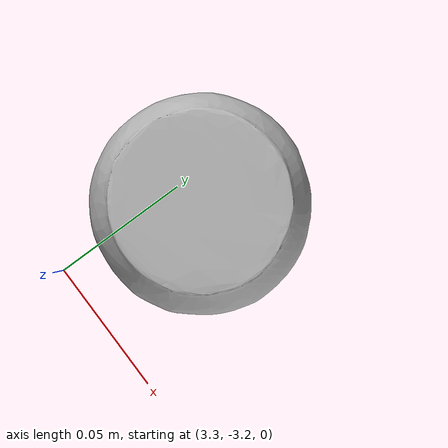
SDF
<?xml version='1.0'?>
<sdf version='1.7'>
<model name='coke_0'>
<pose> 3.31160724870984 -3.147344930027877 0 0 0 0.29947514824797866 </pose>
  <link name="link">
    <inertial>
      <pose>0 0 0.06 0 0 0</pose>
      <mass>0.014</mass>
      <inertia>
        <ixx>0.00055575</ixx>
        <ixy>0</ixy>
        <ixz>0</ixz>
        <iyy>0.00055575</iyy>
        <iyz>0</iyz>
        <izz>0.0001755</izz>
      </inertia>
    </inertial>
    <collision name="collision">
      <pose>0.003937 0.0047244 -0.18 0 0 0</pose>
      <geometry>
        <mesh>
          <uri>coke_can.dae</uri>
        </mesh>
      </geometry>
      <surface>
        <friction>
          <ode>
            <mu>30.0</mu>
            <mu2>30.0</mu2>
          </ode>
        </friction>
        <contact>
          <ode>
            <kp>10000000.0</kp>
            <kd>1.0</kd>
            <min_depth>0.001</min_depth>
            <max_vel>0.1</max_vel>
          </ode>
        </contact>
      </surface>
    </collision>
    <visual name="visual">
      <pose>0.003937 0.0047244 -0.18 0 0 0</pose>
      <geometry>
        <mesh>
          <uri>coke_can.dae</uri>
        </mesh>
      </geometry>
    </visual>
  </link>
</model>
</sdf>
